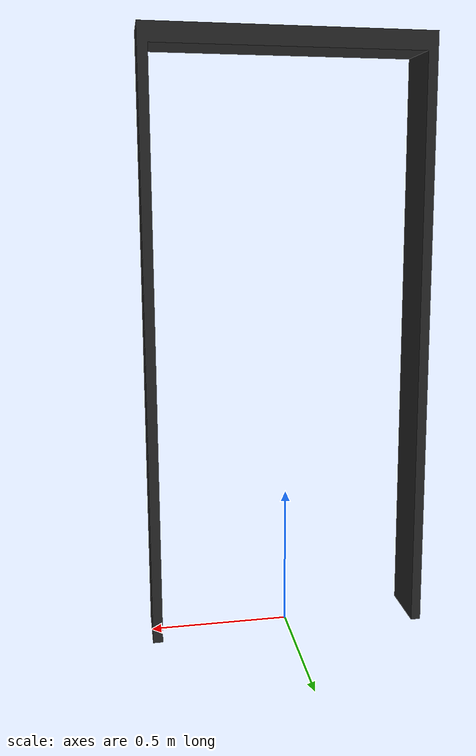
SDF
<?xml version="1.0"?>
<sdf version='1.6'>
  <model name='Door_frame'>
    <link name='Door_frame'>
      <pose frame=''>0 0 0 0 -0 0</pose>
      <inertial>
        <pose frame=''>-0 0 1.3579 0 -0 0</pose>
        <mass>25.078</mass>
        <inertia>
          <ixx>12.206</ixx>
          <ixy>-6.3791e-17</ixy>
          <ixz>-2.445e-14</ixz>
          <iyy>16.813</iyy>
          <iyz>-4.60675e-16</iyz>
          <izz>4.7746</izz>
        </inertia>
      </inertial>
      <collision name='Door_frame_collision'>
        <pose frame=''>0 0 0 1.5708 -0 0</pose>
        <geometry>
          <mesh>
            <scale>1 1 1</scale>
            <uri>model://Door_out/meshes/Door_out.dae</uri>
          </mesh>
        </geometry>
      </collision>
      <visual name='Door_frame_visual'>
        <pose frame=''>0 0 0 1.5708 -0 0</pose>
        <geometry>
          <mesh>
            <scale>1 1 1</scale>
            <uri>model://Door_out/meshes/Door_out.dae</uri>
          </mesh>
        </geometry>
      </visual>
    </link>
  </model>
</sdf>
